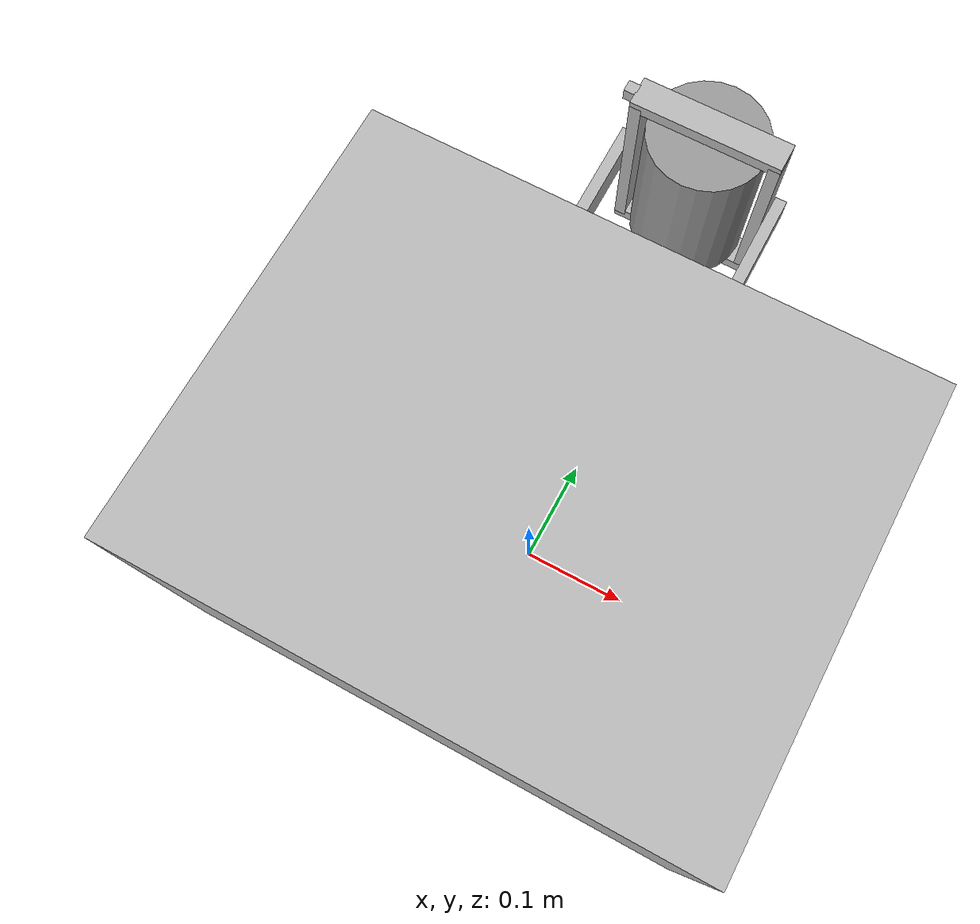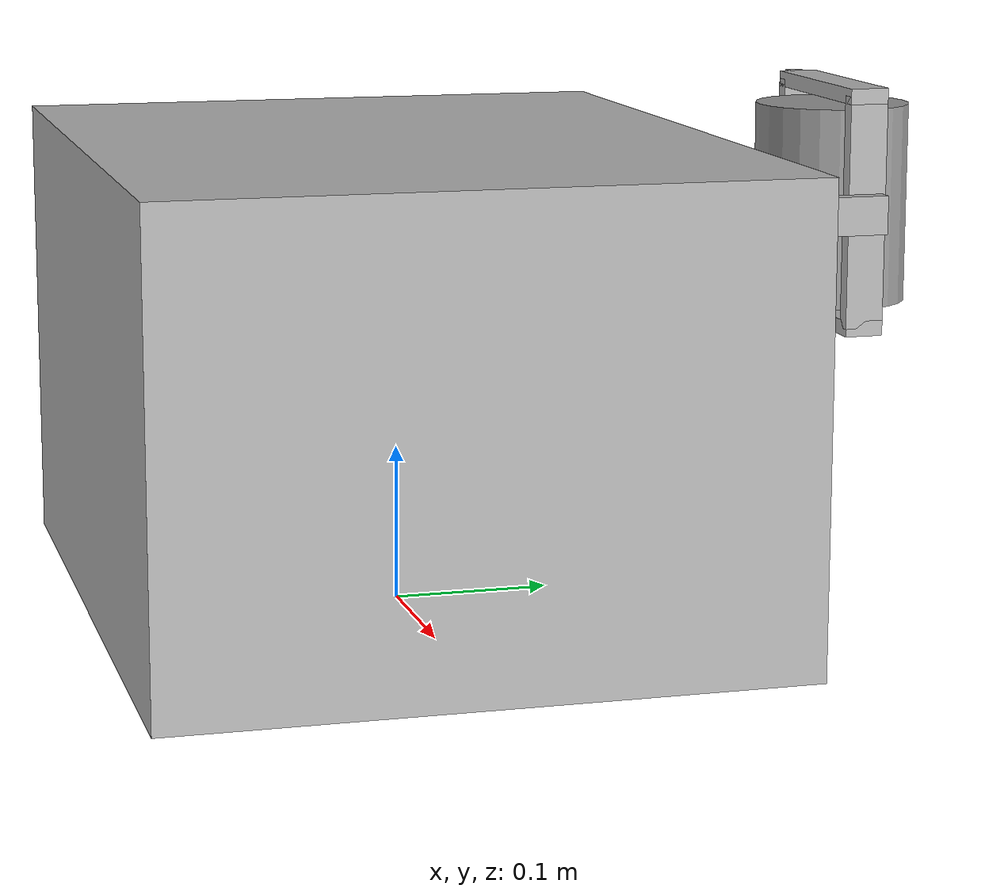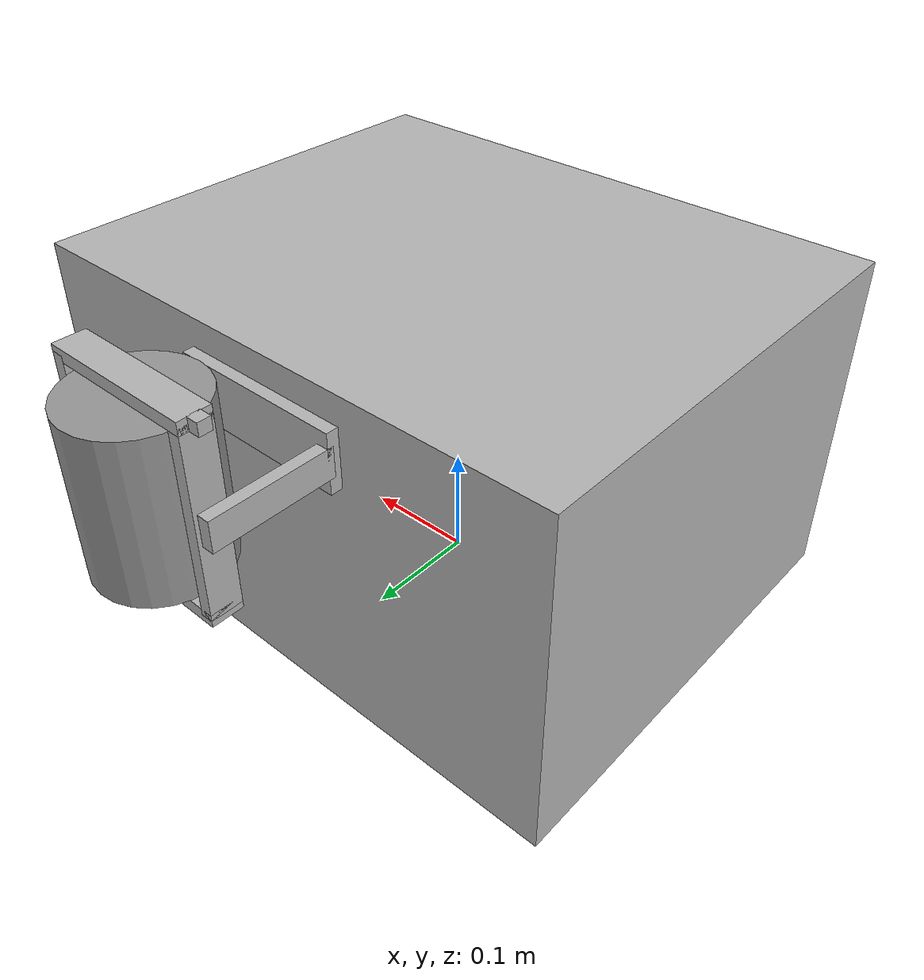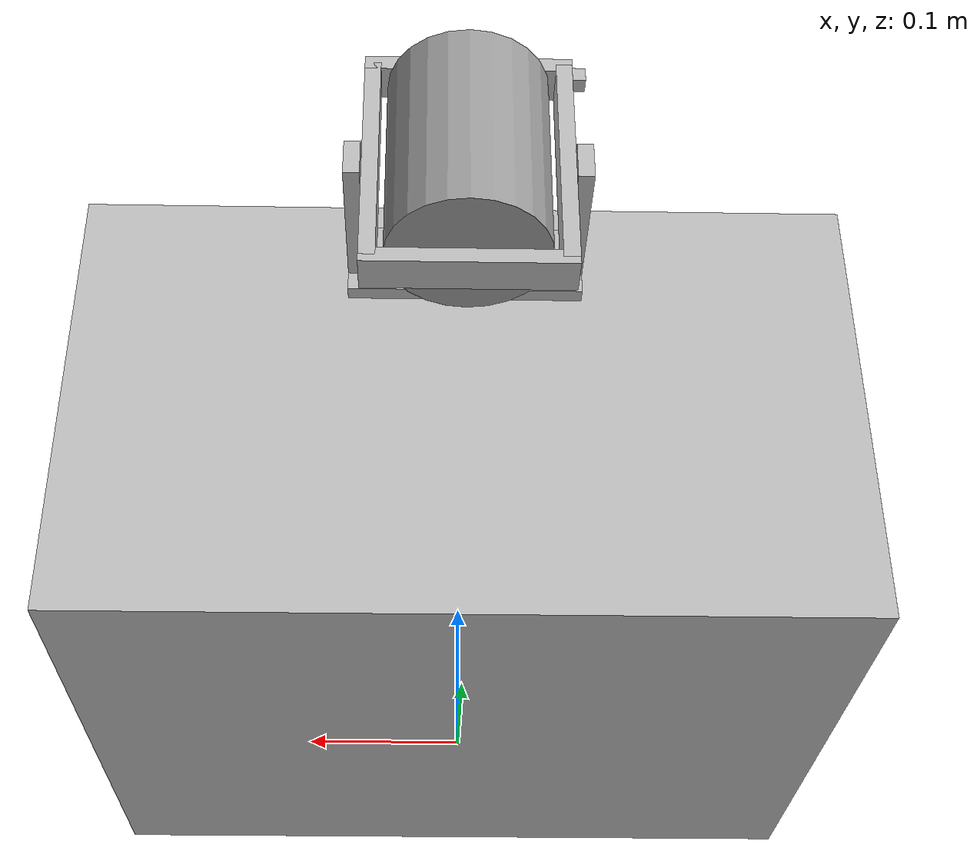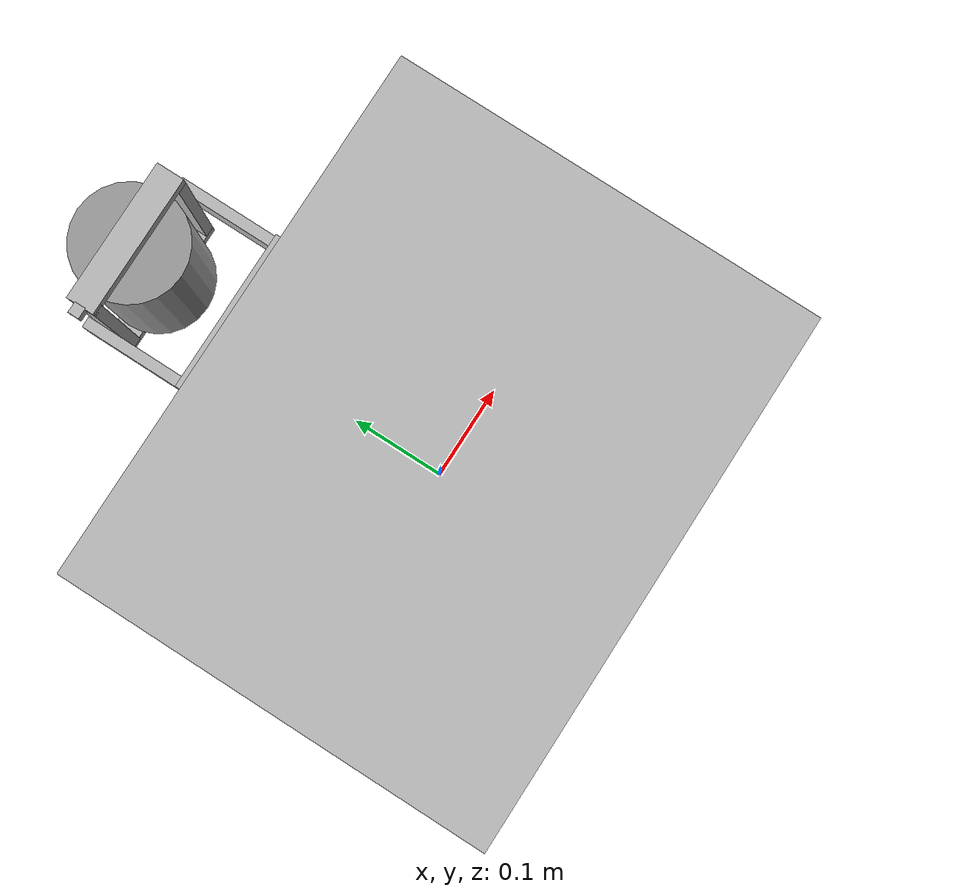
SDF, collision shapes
<?xml version='1.0'?>
<sdf version='1.6'>
  <model name='gimbal_on_box'>
    <model name='cardboard_box'>
      <!--tmiller: make box static so it doesnt move-->
      <static>1</static>
      <pose frame=''>0 0 0.15 0 -0 0</pose>
      <link name='link'>
        <inertial>
          <mass>2</mass>
          <inertia>
            <ixx>0.0416667</ixx>
            <ixy>0</ixy>
            <ixz>0</ixz>
            <iyy>0.0566667</iyy>
            <iyz>0</iyz>
            <izz>0.0683333</izz>
          </inertia>
        </inertial>
        <collision name='collision'>
          <geometry>
            <box>
              <size>0.5 0.4 0.3</size>
            </box>
          </geometry>
          <surface>
            <friction>
              <ode>
                <mu>1</mu>
                <mu2>1</mu2>
              </ode>
            </friction>
            <contact>
              <ode>
                <kp>1e+07</kp>
                <kd>1</kd>
                <min_depth>0.001</min_depth>
                <max_vel>0.1</max_vel>
              </ode>
            </contact>
          </surface>
        </collision>
        <visual name='visual'>
          <pose frame=''>0 0 -0.15 0 -0 0</pose>
          <geometry>
            <mesh>
              <uri>model://cardboard_box/meshes/cardboard_box.dae</uri>
              <scale>1.25932 1.00745 0.755591</scale>
            </mesh>
          </geometry>
        </visual>
      </link>
    </model>

    <include>
      <uri>model://pitch_yaw_gimbal</uri>
      <!--Offset y just enough so the gimbal arm doesnt actually intersect with the box.
          If it does intersect, you get a weird twitching motion on the gimbal arm-->
      <pose frame=''>0 0.205 0.15 0 0 0</pose>
    </include>

    <joint name="box_gimbal_attach_joint" type='fixed'>
      <parent>cardboard_box::link</parent>
      <child>pitch_yaw_gimbal::pitch_arm</child>
      <pose>0 -0.005 0 0 0 0</pose>
    </joint>

    <static>0</static>
    <allow_auto_disable>1</allow_auto_disable>

  </model>
</sdf>

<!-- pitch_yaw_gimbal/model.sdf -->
<sdf version="1.6">
    <model name="pitch_yaw_gimbal">
        <!--Set to true to have mode not affected by physics. Useful when building the model-->
        <static>false</static>
        <link name="pitch_arm">
            <!--Position (x,y,z) in meters then orientation (r,p,y) in rad(?) of the link-->
            <pose>0 0 0.1 0 0 0</pose>
            <inertial>
                <mass>0.02</mass> <!--Mass in kg-->
                <inertia>
                    <ixx>0.0000161</ixx>   <!-- for a box: ixx = 0.083 * mass * (y*y + z*z) -->
                    <ixy>0.0</ixy>         <!-- for a box: ixy = 0 -->
                    <ixz>0.0</ixz>         <!-- for a box: ixz = 0 -->
                    <iyy>0.00004001</iyy>  <!-- for a box: iyy = 0.083 * mass * (x*x + z*z) -->
                    <iyz>0.0</iyz>         <!-- for a box: iyz = 0 -->
                    <izz>0.0000508</izz>   <!-- for a box: izz = 0.083 * mass * (x*x + y*y) -->

                </inertia>
                <pose>0 0.05 0 0 0 0</pose>
            </inertial>
            <collision name="aircraft_to_pitch_arms">
                <!--Use a box to represent the part of the gimbal that attaches to the aircraft. From this
                    piece, the two pitch arms come out-->
                <geometry>
                    <box>
                        <size>.15 .01 .05</size>
                    </box>
                </geometry>
            </collision>
            <collision name="pitch_arm_right">
                <!--Pitch arm on the left on the gimbal when looking down from above-->
                <pose>.07 .05 0 0 0 0</pose>
                <geometry>
                    <box>
                        <size>.01 .1 .025</size>
                    </box>
                </geometry>
            </collision>
            <collision name="pitch_arm_left">
                <!--Pitch arm on the right on the gimbal when looking down from above-->
                <pose>-.07 .05 0 0 0 0</pose>
                <geometry>
                    <box>
                        <size>.01 .1 .025</size>
                    </box>
                </geometry>
            </collision>

            <!--For now the visuals will be exactly the same-->
            <visual name="aircraft_to_pitch_arms_vis">
                <geometry>
                    <box>
                        <size>.15 .01 .05</size>
                    </box>
                </geometry>
            </visual>
            <visual name="pitch_arm_right_vis">
                <pose>.07 .05 0 0 0 0</pose>
                <geometry>
                    <box>
                        <size>.01 .1 .025</size>
                    </box>
                </geometry>
            </visual>
            <visual name="pitch_arm_left_vis">
                <pose>-.07 .05 0 0 0 0</pose>
                <geometry>
                    <box>
                        <size>.01 .1 .025</size>
                    </box>
                </geometry>
            </visual>
        </link>

        <link name="yaw_arm">
            <!--The box arm that holds the yaw motor. this is a child of the pitch arm
                Y origin should be just about at the end of the pitch arms length-->
            <pose>0 .09 0.1 0 0 0</pose>
            <inertial>
                <mass>.015</mass> <!--Mass is in kg-->
                <inertia>
                    <ixx>0.00002890625</ixx>
                    <ixy>0</ixy>
                    <ixz>0</ixz>
                    <iyy>0.000048605</iyy>
                    <iyz>0</iyz>
                    <izz>0.00002126125</izz>
                </inertia>
            </inertial>
            <collision name="yaw_arm_left">
                <pose>-.059 0 0 0 0 0</pose>
                <geometry>
                    <box>
                        <size>.01 .025 .15</size>
                    </box>
                </geometry>
            </collision>
            <collision name="yaw_arm_right">
                <pose>.059 0 0 0 0 0</pose>
                <geometry>
                    <box>
                        <size>.01 .025 .15</size>
                    </box>
                </geometry>
            </collision>
            <collision name="yaw_arm_top">
                <pose>0 0 .075 0 0 0</pose>
                <geometry>
                    <box>
                        <size>.128 .025 .01</size>
                    </box>
                </geometry>
            </collision>
            <collision name="yaw_arm_bottom">
                <pose>0 0 -.075 0 0 0</pose>
                <geometry>
                    <box>
                        <size>.128 .025 .01</size>
                    </box>
                </geometry>
            </collision>
            <collision name="pitch_stop_top">
                <pose>-.068 0 .075 0 0 0</pose>
                <geometry>
                    <box>
                        <size>.01 .01 .01</size>
                    </box>
                </geometry>
            </collision>

            <!--For now the visuals will be exactly the same-->
            <visual name="yaw_arm_left_vis">
                <pose>-.059 0 0 0 0 0</pose>
                <geometry>
                    <box>
                        <size>.01 .025 .15</size>
                    </box>
                </geometry>
            </visual>
            <visual name="yaw_arm_right_vis">
                <pose>.059 0 0 0 0 0</pose>
                <geometry>
                    <box>
                        <size>.01 .025 .15</size>
                    </box>
                </geometry>
            </visual>
            <visual name="yaw_arm_top_vis">
                <pose>0 0 .075 0 0 0</pose>
                <geometry>
                    <box>
                        <size>.128 .025 .01</size>
                    </box>
                </geometry>
            </visual>
            <visual name="yaw_arm_bottom_vis">
                <pose>0 0 -.075 0 0 0</pose>
                <geometry>
                    <box>
                        <size>.128 .025 .01</size>
                    </box>
                </geometry>
            </visual>
            <visual name="pitch_stop_top_vis">
                <pose>-.068 0 .075 0 0 0</pose>
                <geometry>
                    <box>
                        <size>.01 .01 .01</size>
                    </box>
                </geometry>
            </visual>

        </link>

        <link name="payload">
            <!--Same pose as the yaw arm so its centered-->
            <pose>0 .09 0.1 0 0 0</pose>
            <inertial>
                <!--Mass is in kg-->
                <mass>.05</mass>
                <inertia>
                    <ixx>0.00010166667</ixx>
                    <ixy>0</ixy>
                    <ixz>0</ixz>
                    <iyy>0.00010166667</iyy>
                    <iyz>0</iyz>
                    <izz>0.0000625</izz>
                </inertia>
            </inertial>
            <!--Collision is simple cylinder while visual is more complex-->
            <collision name="payload">
                <geometry>
                    <cylinder>
                        <radius>.05</radius>
                        <length>.13</length>
                    </cylinder>
                </geometry>
            </collision>
            <visual name='payload_vis'>
                <pose>0 0 -0.065 0 0 1.570795</pose>
                <geometry>
                <polyline>
                    <height>0.125</height>
                    <point>0.00760627 0.0492587</point>
                    <point>0.0144458 0.0488088</point>
                    <point>0.0212937 0.0475121</point>
                    <point>0.0276877 0.0454477</point>
                    <point>0.0331653 0.042695</point>
                    <point>0.0372643 0.0393331</point>
                    <point>0.0379975 0.038523</point>
                    <point>0.0391229 0.0371049</point>
                    <point>0.0403205 0.0351534</point>
                    <point>0.0412703 0.0327429</point>
                    <point>0.0416524 0.0299478</point>
                    <point>0.0415674 0.000106743</point>
                    <point>0.0415976 -0.0294405</point>
                    <point>0.0413186 -0.0320958</point>
                    <point>0.0405848 -0.0344677</point>
                    <point>0.0395601 -0.0365048</point>
                    <point>0.038408 -0.0381556</point>
                    <point>0.0372925 -0.0393688</point>
                    <point>0.0323942 -0.0430866</point>
                    <point>0.0267909 -0.0458754</point>
                    <point>0.0206682 -0.0477944</point>
                    <point>0.0142115 -0.0489024</point>
                    <point>0.00760627 -0.0492587</point>
                    <point>-0.00796328 -0.0467474</point>
                    <point>-0.0214853 -0.0397546</point>
                    <point>-0.0321483 -0.0290915</point>
                    <point>-0.0391412 -0.0155695</point>
                    <point>-0.0416524 4.5579e-10</point>
                    <point>-0.0391412 0.0155695</point>
                    <point>-0.0321483 0.0290915</point>
                    <point>-0.0214853 0.0397546</point>
                    <point>-0.00796328 0.0467474</point>
                    <point>0.00760627 0.0492587</point>
                </polyline>
                </geometry>
                <material>
                    <lighting>1</lighting>
                    <script>
                        <uri>file://media/materials/scripts/gazebo.material</uri>
                        <name>Gazebo/Grey</name>
                    </script>
                    <shader type='pixel'/>
                </material>
                <transparency>0</transparency>
                <cast_shadows>1</cast_shadows>
            </visual>
            <sensor name='imu_sensor' type='imu'>
                <pose frame=''>0 0 0 0 -0 0</pose>
                <always_on>1</always_on>
                <update_rate>100</update_rate>
            </sensor>
        </link>

        <!--Pitch joint. Note: these names are important. The gimbalJoints plugin below
            looks for "pitch_joint" or "yaw_joint" to identify joint type-->
        <joint type="revolute" name="pitch_joint">
            <pose>-.06 0 0 0 0 0</pose>
            <parent>pitch_arm</parent>
            <child>yaw_arm</child>
            <!--define axis of revolution-->
            <axis>
                <xyz>1 0 0</xyz>
                <!--Define joint limits in radians (the visual mechanical stop doesnt do anything)-->
                <limit>
                    <lower>-1.420796</lower> <!--~90% pi/2-->
                    <upper>1.420796</upper>
                    <effort>10</effort> <!--max effort you can apply to joint in Nm?-->
                </limit>
                <!--Dynamics makes the joint more realistic in sim-->
                <dynamics>
                    <damping>0.5</damping>
                    <spring_reference>0</spring_reference>
                    <spring_stiffness>0</spring_stiffness>
                </dynamics>
            </axis>
            <physics>
                <!--ode is gazebos default physics engine. Properties here are specific to it-->
                <ode>
                    <implicit_spring_damper>1</implicit_spring_damper>
                </ode>
            </physics>
        </joint>

        <!--Yaw to payload joint Note: these names are important. The gimbalJoints plugin below
            looks for "pitch_joint" or "yaw_joint" to identify joint type-->
        <joint type="revolute" name="yaw_joint">
            <pose>0 0 .065 0 0 0</pose>
            <parent>yaw_arm</parent>
            <child>payload</child>
            <!--define axis of revolution-->
            <axis>
                <xyz>0 0 1</xyz>
                <!--Define joint limits in radians-->
                <limit>
                    <lower>-0.9424778</lower> <!--~60% pi/2-->
                    <upper>0.9424778</upper>
                    <effort>10</effort> <!--max effort you can apply to joint in Nm?-->
                </limit>
                <!--Dynamics makes the joint more realistic in sim-->
                <dynamics>
                    <damping>0.5</damping>
                    <spring_reference>0</spring_reference>
                    <spring_stiffness>0</spring_stiffness>
                </dynamics>
            </axis>
            <physics>
                <!--ode is gazebos default physics engine. Properties here are specific to it-->
                <ode>
                    <implicit_spring_damper>1</implicit_spring_damper>
                </ode>
            </physics>
        </joint>

        <plugin name="gimbalJoints" filename="libgimbal_motor_plugin.so"/>

    </model>
</sdf>
